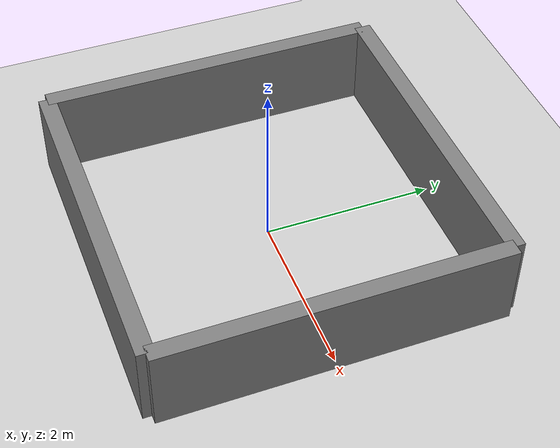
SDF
<?xml version="1.0" ?>
<sdf version="1.6">
  <world name="stage1_bounded_arena">
    <!-- Stage 1: Bounded arena for basic goal navigation -->

    <!-- Global light source -->
    <include>
      <uri>model://sun</uri>
    </include>

    <!-- Ground plane -->
    <include>
      <uri>model://ground_plane</uri>
    </include>

    <!-- Physics settings -->
    <physics type="ode">
      <real_time_update_rate>1000.0</real_time_update_rate>
      <max_step_size>0.002</max_step_size>
      <real_time_factor>3</real_time_factor>
      <ode>
        <solver>
          <type>quick</type>
          <iters>20</iters>
          <precon_iters>0</precon_iters>
          <sor>1.300000</sor>
          <use_dynamic_moi_rescaling>1</use_dynamic_moi_rescaling>
        </solver>
        <constraints>
          <cfm>0.0</cfm>
          <erp>0.2</erp>
          <contact_max_correcting_vel>100.000000</contact_max_correcting_vel>
          <contact_surface_layer>0.001</contact_surface_layer>
        </constraints>
      </ode>
    </physics>

    <!-- Scene settings -->
    <scene>
      <ambient>0.4 0.4 0.4 1</ambient>
      <background>0.7 0.7 0.7 1</background>
      <shadows>false</shadows>
    </scene>

    <!-- Camera view -->
    <gui fullscreen='0'>
      <camera name='user_camera'>
        <pose>0 -8 8 0 0.7 1.57</pose>
        <view_controller>orbit</view_controller>
      </camera>
    </gui>

    <!-- BOUNDED ARENA: 4x4 meter box made of walls -->

    <!-- Wall 1: North (y = 1.5) -->
    <model name="wall_north">
      <static>true</static>
      <pose>0 2.0 0.5 0 0 0</pose>
      <link name="link">
        <collision name="collision">
          <geometry>
            <box>
              <size>4 0.2 1</size>
            </box>
          </geometry>
        </collision>
        <visual name="visual">
          <geometry>
            <box>
              <size>4 0.2 1</size>
            </box>
          </geometry>
          <material>
            <ambient>0.5 0.5 0.5 1</ambient>
            <diffuse>0.5 0.5 0.5 1</diffuse>
          </material>
        </visual>
      </link>
    </model>

    <!-- Wall 2: South (y = -2.0) -->
    <model name="wall_south">
      <static>true</static>
      <pose>0 -2.0 0.5 0 0 0</pose>
      <link name="link">
        <collision name="collision">
          <geometry>
            <box>
              <size>4 0.2 1</size>
            </box>
          </geometry>
        </collision>
        <visual name="visual">
          <geometry>
            <box>
              <size>4 0.2 1</size>
            </box>
          </geometry>
          <material>
            <ambient>0.5 0.5 0.5 1</ambient>
            <diffuse>0.5 0.5 0.5 1</diffuse>
          </material>
        </visual>
      </link>
    </model>

    <!-- Wall 3: East (x = 2.0) -->
    <model name="wall_east">
      <static>true</static>
      <pose>2.0 0 0.5 0 0 0</pose>
      <link name="link">
        <collision name="collision">
          <geometry>
            <box>
              <size>0.2 4 1</size>
            </box>
          </geometry>
        </collision>
        <visual name="visual">
          <geometry>
            <box>
              <size>0.2 4 1</size>
            </box>
          </geometry>
          <material>
            <ambient>0.5 0.5 0.5 1</ambient>
            <diffuse>0.5 0.5 0.5 1</diffuse>
          </material>
        </visual>
      </link>
    </model>

    <!-- Wall 4: West (x = -2.0) -->
    <model name="wall_west">
      <static>true</static>
      <pose>-2.0 0 0.5 0 0 0</pose>
      <link name="link">
        <collision name="collision">
          <geometry>
            <box>
              <size>0.2 4 1</size>
            </box>
          </geometry>
        </collision>
        <visual name="visual">
          <geometry>
            <box>
              <size>0.2 4 1</size>
            </box>
          </geometry>
          <material>
            <ambient>0.5 0.5 0.5 1</ambient>
            <diffuse>0.5 0.5 0.5 1</diffuse>
          </material>
        </visual>
      </link>
    </model>

    <!-- Goal Marker: Dynamic green cylinder that will be moved via SetModelState -->
    <!-- Non-collidable and invisible to robot sensors -->
    <model name="goal_marker">
      <static>false</static>
      <pose>1.5 1.5 0.1 0 0 0</pose>
      <link name="link">
        <gravity>false</gravity>
        <kinematic>true</kinematic>
        <!-- Collision geometry - made passthrough for sensors -->
        <collision name="collision">
          <laser_retro>0</laser_retro>
          <max_contacts>0</max_contacts>
          <geometry>
            <cylinder>
              <radius>0.1</radius>
              <length>0.1</length>
            </cylinder>
          </geometry>
          <surface>
            <contact>
              <collide_without_contact>true</collide_without_contact>
            </contact>
          </surface>
        </collision>

        <visual name="visual">
          <geometry>
            <cylinder>
              <radius>0.1</radius>
              <length>0.1</length>
            </cylinder>
          </geometry>
          <material>
            <ambient>0 1 0 0.8</ambient>
            <diffuse>0 1 0 0.8</diffuse>
            <specular>0 1 0 1</specular>
            <emissive>0 0.5 0 1</emissive>
          </material>
        </visual>
      </link>
    </model>

  </world>
</sdf>
